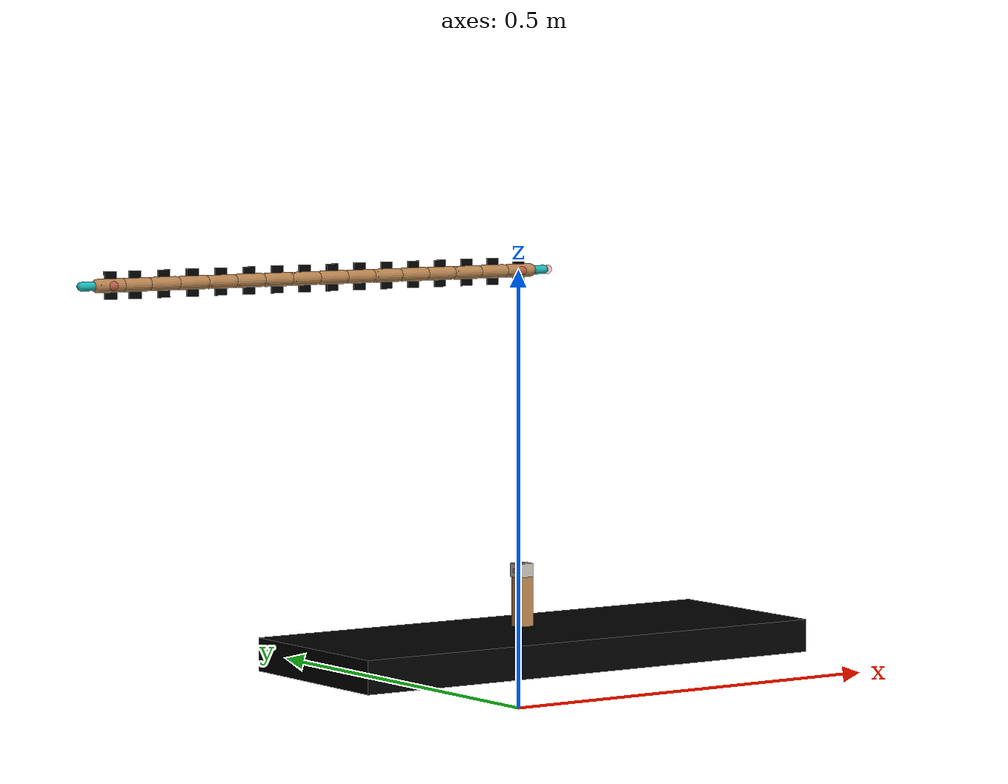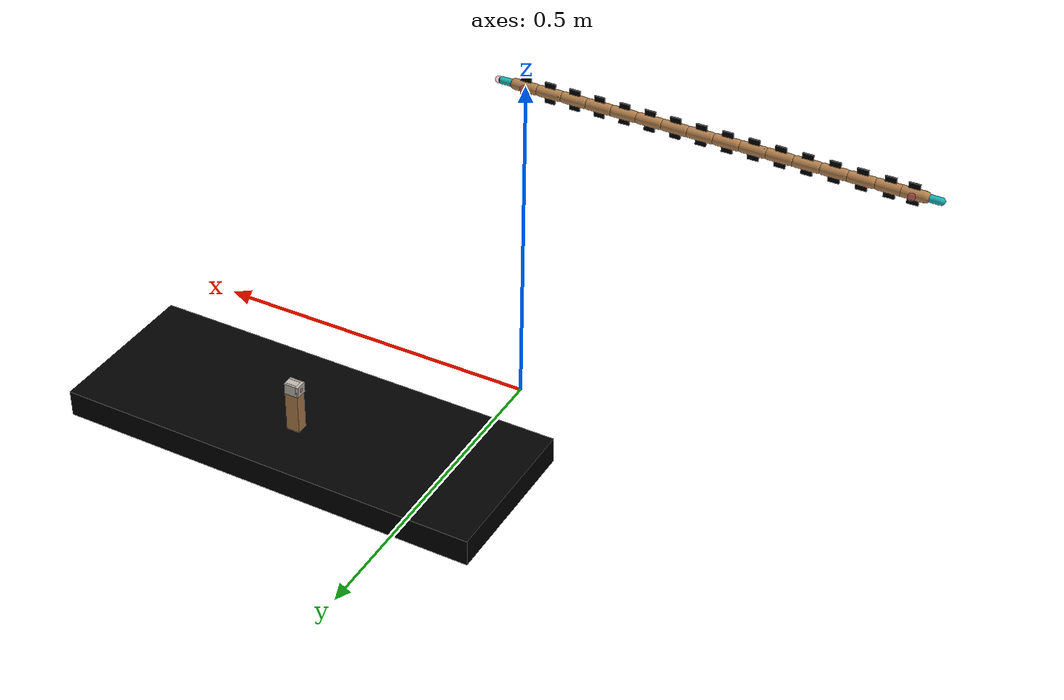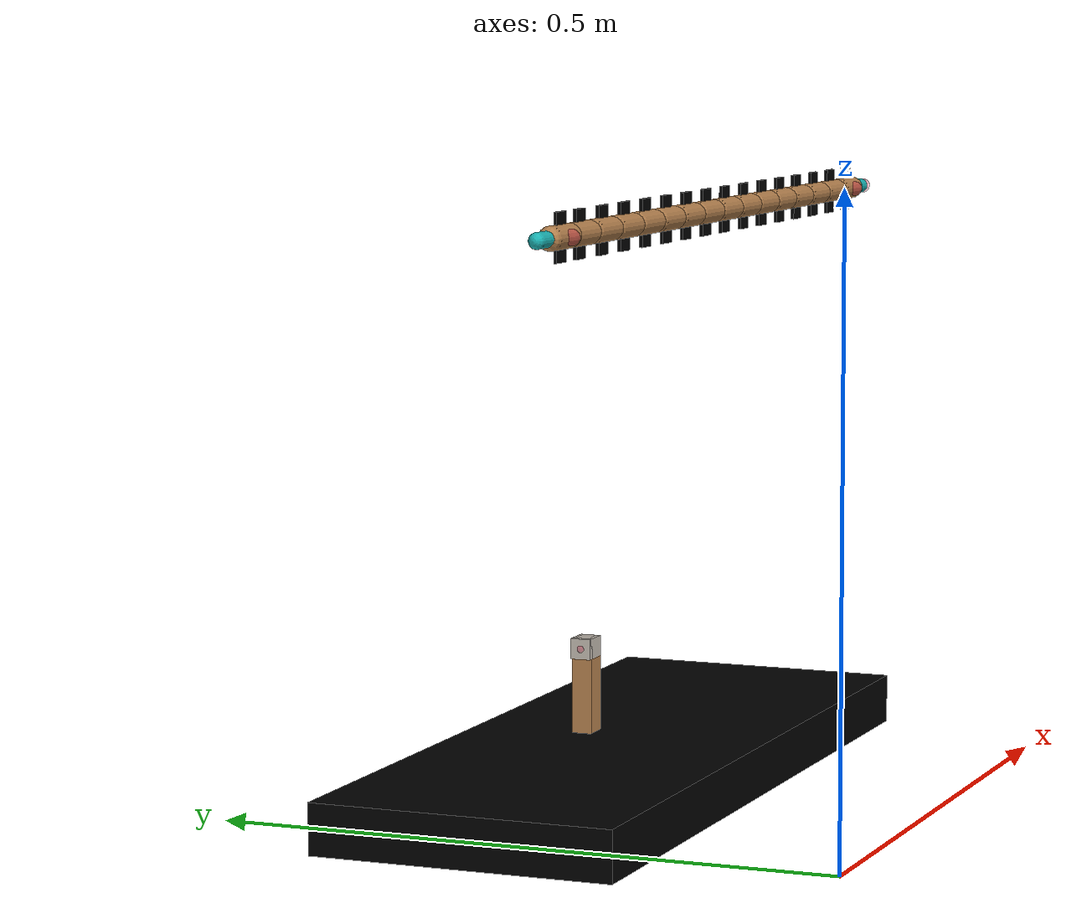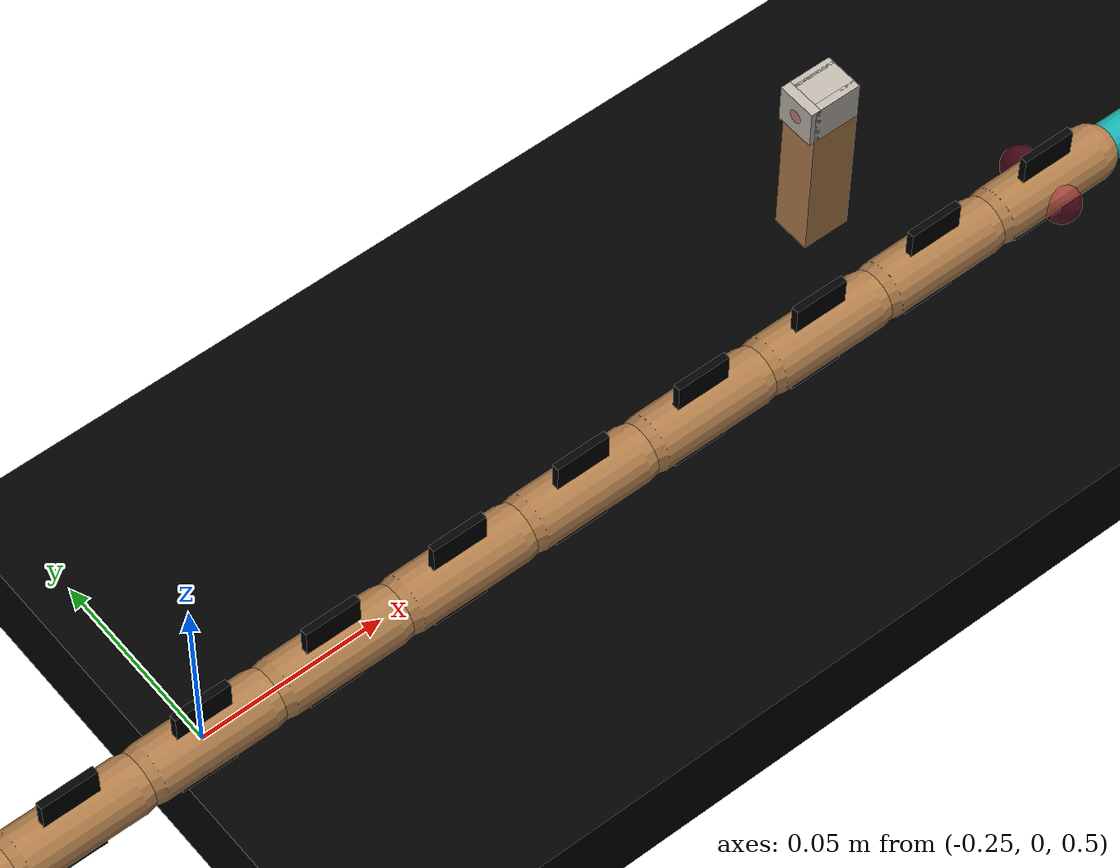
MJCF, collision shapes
<mujoco model="wire_insertion">
    <custom>
        <numeric data="0.4 0.25 0.151527 0.707107 0 0 -0.707107" name="wire1_initpos" />
        <!-- horizontal-->
        <numeric data="0.2 0.25 0.029527 1 0 0 0" name="table1_initpos" />
        <!-- vertical-->
    </custom>

    <asset>
        <material name="table_mat" specular="0" shininess="0.5" reflectance="0" rgba="0.93 0.93 0.93 1"/>
        <!-- ceramic table texture and material-->
        <texture file="../textures/ceramic.png" type="cube" name="tex-ceramic"/>
        <material name="table_ceramic" reflectance="0.0" shininess="0.0" specular="0.2" texrepeat="1 1" texture="tex-ceramic" />
        <texture file="../textures/steel-scratched.png" type="cube" name="steel-metal"/>
        <material name="smetal" reflectance="1.0" shininess="1.0" specular="1.0" texrepeat="1 1" texture="steel-metal" texuniform="true"/>
        <texture file="../textures/brass-ambra.png" type="cube" name="brass-metal"/>
        <material name="bmetal"  reflectance="1.0" shininess="1.0" specular="1.0" texrepeat="1 1" texture="brass-metal" texuniform="true"/>
        <mesh file="table_lack_0825/table.stl" name="part4" scale="0.015 0.015 0.02" />
        <texture file="../textures/light-wood.png" name="tex-light-wood" type="2d" />
        <material name="pencil-wood" reflectance="0.5" texrepeat="20 20" texture="tex-light-wood" texuniform="true" />
        <texture file="../textures/red-wood.png" name="tex-red-wood" type="2d" />
        <material name="red-wood" reflectance="0.5" texrepeat="20 20" texture="tex-red-wood" texuniform="true" />
        <texture name="grid" type="2d" builtin="checker" rgb1=".1 .2 .3" rgb2=".2 .3 .4" width="300" height="300" mark="edge" markrgb=".2 .3 .4"/>
        <material name="self" rgba=".7 .5 .3 1"/>
        <material name="self_default" rgba=".7 .5 .3 1"/>
        <material name="self_highlight" rgba="0 .5 .3 1"/>
        <material name="effector" rgba=".7 .4 .2 1"/>
        <material name="effector_default" rgba=".7 .4 .2 1"/>
        <material name="effector_highlight" rgba="0 .5 .3 1"/>
        <material name="decoration" rgba=".3 .5 .7 1"/>
        <material name="eye" rgba="0 .2 1 1"/>
        <material name="target" rgba=".6 .3 .3 1"/>
        <material name="target_default" rgba=".6 .3 .3 1"/>
        <material name="target_highlight" rgba=".6 .3 .3 .4"/>
        <material name="site" rgba=".5 .5 .5 .3"/>
    </asset>

    <default>
        <default class="swimmer">
            <joint type="hinge" pos="0 -0.015 0" axis="0 0 1" damping=".005" limited="true" solreflimit=".05 1" solimplimit="0 .8 .1" armature="1e-6"/>
            <default class="collision">
                <geom type="box" size="0.001 0.015 0.0075" quat="0.707107 0.707107 0 0" rgba="0 0 0 0"/>
            </default>
            <default class="visual">
                <geom type="capsule" size="0.0075" quat="0.707107 0.707107 0 0" fromto="0 -0.015 0 0 0.015 0" material="self"/>
            </default>
            <site size=".005" rgba="0.2941 0.9019 0.0980 0.3" type="sphere"/>
        </default>
    </default>

    <equality>
        <connect active="false" body1="wire1" body2="table1" anchor="0.10514361 0.19101518 0.10821976" solimp="1 1 0.5" solref="0.01 0.3" />
        <weld active="true" body1="table1" solimp="1 1 0.5" solref="0.01 0.3" />
    </equality>

    <compiler meshdir=""/>
    <size njmax="8000" nconmax="4000"/>

    <worldbody>
        <!-- include a wire -->
           -->

        <!-- Wire -->

        <body name="wire1" pos="0 0 .5" quat="0.707107 0 0 0.707107" childclass="swimmer">
            <inertial pos="0.055 0 0" quat="0.707107 0 0.707107 0" mass="0.00274889" diaginertia="2.97797e-07 2.97797e-07 3.43612e-08"/>
            <light name="light_1" diffuse=".8 .8 .8" pos="0 0 1.5"/>
            <camera name="tracking1" pos="0.0 -0.5 1.25" xyaxes="1 0 0 0 1 1" mode="trackcom" fovy="60"/>
            <camera name="tracking2" pos="-2.25 1.25 0.375" xyaxes="0 -1 0 .3 0 1" mode="trackcom" fovy="60"/>
            <camera name="eyes" pos="0 -.058 .005" xyaxes="-1 0 0 0 0 1"/>
            <geom name="wire1_I1_geom" conaffinity="0" contype="0" pos="0 -0.025 0" quat="0.707107 0.707107 0 0" size="0.005 0.01" rgba="0.1 0.7 0.7 1" group="1" type="capsule"/>--&gt;
            <geom name="noviz_collision_wire1_I1" condim="1" pos="0 -0.025 0" quat="0.707107 0.707107 0 0" size="0.005 0.01" type="capsule" rgba="0 0 0 0" group="0" solref="0.001 1"/>
            <geom name="wire1_G0_geom" class="visual" group="1"/>
            <geom name="noviz_collision_wire1_G0" class="collision" group="0"/>
            <site group="1" name="wire1_ltgt_site0" pos="0.0075 0 0" rgba="0.9019 0.0980 0.2941 0.3" size="0.005 0.005 0.005" type="sphere"/>
            <site group="1" name="wire1_rtgt_site0" pos="-0.0075 0 0" rgba="0.9019 0.0980 0.2941 0.3" size="0.005 0.005 0.005" type="sphere"/>
            <!--site for hole-->
            <site group="0" name="wire-hole,conn_site1" pos="0 -0.04 0" quat="0.707107 0 0.707107 0" rgba="0.9019 0.0980 0.2941 0.3" size="0.005"/>
            <!--site for connection-->
            <site name="wire1_horizontal_radius_site" pos="0.0 0 0" rgba="0.9019 0.0980 0.2941 0.3" size="0.0075"/>
            <site name="head"/>
            <body name="composite_B0" pos="0 0.035625 0"><inertial pos="0 0 0" quat="0.707107 0.707107 0 0" mass="0.0125664" diaginertia="1.98968e-06 1.98968e-06 6.28319e-07"/><geom class="visual" name="B0_G1_geom" group="1"/><geom class="collision" name="noviz_collision_B0_G1" group="0"/><site name="site_0"/><joint name="J0_0" range="-120.0 120.0" group="3"/><joint name="J1_0" axis="1 0 0" range="-120.0 120.0" group="3"/><body name="composite_B1" pos="0 0.035625 0"><inertial pos="0 0 0" quat="0.707107 0.707107 0 0" mass="0.0125664" diaginertia="1.98968e-06 1.98968e-06 6.28319e-07"/><geom class="visual" name="B1_G1_geom" group="1"/><geom class="collision" name="noviz_collision_B1_G1" group="0"/><site name="site_1"/><joint name="J0_1" range="-120.0 120.0" group="3"/><joint name="J1_1" axis="1 0 0" range="-120.0 120.0" group="3"/><body name="composite_B2" pos="0 0.035625 0"><inertial pos="0 0 0" quat="0.707107 0.707107 0 0" mass="0.0125664" diaginertia="1.98968e-06 1.98968e-06 6.28319e-07"/><geom class="visual" name="B2_G1_geom" group="1"/><geom class="collision" name="noviz_collision_B2_G1" group="0"/><site name="site_2"/><joint name="J0_2" range="-120.0 120.0" group="3"/><joint name="J1_2" axis="1 0 0" range="-120.0 120.0" group="3"/><body name="composite_B3" pos="0 0.035625 0"><inertial pos="0 0 0" quat="0.707107 0.707107 0 0" mass="0.0125664" diaginertia="1.98968e-06 1.98968e-06 6.28319e-07"/><geom class="visual" name="B3_G1_geom" group="1"/><geom class="collision" name="noviz_collision_B3_G1" group="0"/><site name="site_3"/><joint name="J0_3" range="-120.0 120.0" group="3"/><joint name="J1_3" axis="1 0 0" range="-120.0 120.0" group="3"/><body name="composite_B4" pos="0 0.035625 0"><inertial pos="0 0 0" quat="0.707107 0.707107 0 0" mass="0.0125664" diaginertia="1.98968e-06 1.98968e-06 6.28319e-07"/><geom class="visual" name="B4_G1_geom" group="1"/><geom class="collision" name="noviz_collision_B4_G1" group="0"/><site name="site_4"/><joint name="J0_4" range="-120.0 120.0" group="3"/><joint name="J1_4" axis="1 0 0" range="-120.0 120.0" group="3"/><body name="composite_B5" pos="0 0.035625 0"><inertial pos="0 0 0" quat="0.707107 0.707107 0 0" mass="0.0125664" diaginertia="1.98968e-06 1.98968e-06 6.28319e-07"/><geom class="visual" name="B5_G1_geom" group="1"/><geom class="collision" name="noviz_collision_B5_G1" group="0"/><site name="site_5"/><joint name="J0_5" range="-120.0 120.0" group="3"/><joint name="J1_5" axis="1 0 0" range="-120.0 120.0" group="3"/><body name="composite_B6" pos="0 0.035625 0"><inertial pos="0 0 0" quat="0.707107 0.707107 0 0" mass="0.0125664" diaginertia="1.98968e-06 1.98968e-06 6.28319e-07"/><geom class="visual" name="B6_G1_geom" group="1"/><geom class="collision" name="noviz_collision_B6_G1" group="0"/><site name="site_6"/><joint name="J0_6" range="-120.0 120.0" group="3"/><joint name="J1_6" axis="1 0 0" range="-120.0 120.0" group="3"/><body name="composite_B7" pos="0 0.035625 0"><inertial pos="0 0 0" quat="0.707107 0.707107 0 0" mass="0.0125664" diaginertia="1.98968e-06 1.98968e-06 6.28319e-07"/><geom class="visual" name="B7_G1_geom" group="1"/><geom class="collision" name="noviz_collision_B7_G1" group="0"/><site name="site_7"/><joint name="J0_7" range="-120.0 120.0" group="3"/><joint name="J1_7" axis="1 0 0" range="-120.0 120.0" group="3"/><body name="composite_B8" pos="0 0.035625 0"><inertial pos="0 0 0" quat="0.707107 0.707107 0 0" mass="0.0125664" diaginertia="1.98968e-06 1.98968e-06 6.28319e-07"/><geom class="visual" name="B8_G1_geom" group="1"/><geom class="collision" name="noviz_collision_B8_G1" group="0"/><site name="site_8"/><joint name="J0_8" range="-120.0 120.0" group="3"/><joint name="J1_8" axis="1 0 0" range="-120.0 120.0" group="3"/><body name="composite_B9" pos="0 0.035625 0"><inertial pos="0 0 0" quat="0.707107 0.707107 0 0" mass="0.0125664" diaginertia="1.98968e-06 1.98968e-06 6.28319e-07"/><geom class="visual" name="B9_G1_geom" group="1"/><geom class="collision" name="noviz_collision_B9_G1" group="0"/><site name="site_9"/><joint name="J0_9" range="-120.0 120.0" group="3"/><joint name="J1_9" axis="1 0 0" range="-120.0 120.0" group="3"/><body name="composite_B10" pos="0 0.035625 0"><inertial pos="0 0 0" quat="0.707107 0.707107 0 0" mass="0.0125664" diaginertia="1.98968e-06 1.98968e-06 6.28319e-07"/><geom class="visual" name="B10_G1_geom" group="1"/><geom class="collision" name="noviz_collision_B10_G1" group="0"/><site name="site_10"/><joint name="J0_10" range="-120.0 120.0" group="3"/><joint name="J1_10" axis="1 0 0" range="-120.0 120.0" group="3"/><body name="composite_B11" pos="0 0.035625 0"><inertial pos="0 0 0" quat="0.707107 0.707107 0 0" mass="0.0125664" diaginertia="1.98968e-06 1.98968e-06 6.28319e-07"/><geom class="visual" name="B11_G1_geom" group="1"/><geom class="collision" name="noviz_collision_B11_G1" group="0"/><site name="site_11"/><joint name="J0_11" range="-120.0 120.0" group="3"/><joint name="J1_11" axis="1 0 0" range="-120.0 120.0" group="3"/><body name="composite_B12" pos="0 0.035625 0"><inertial pos="0 0 0" quat="0.707107 0.707107 0 0" mass="0.0125664" diaginertia="1.98968e-06 1.98968e-06 6.28319e-07"/><geom class="visual" name="B12_G1_geom" group="1"/><geom class="collision" name="noviz_collision_B12_G1" group="0"/><site name="site_12"/><joint name="J0_12" range="-120.0 120.0" group="3"/><joint name="J1_12" axis="1 0 0" range="-120.0 120.0" group="3"/><body name="composite_B13" pos="0 0.035625 0"><inertial pos="0 0 0" quat="0.707107 0.707107 0 0" mass="0.0125664" diaginertia="1.98968e-06 1.98968e-06 6.28319e-07"/><geom class="visual" name="B13_G1_geom" group="1"/><geom class="collision" name="noviz_collision_B13_G1" group="0"/><site name="site_13"/><joint name="J0_13" range="-120.0 120.0" group="3"/><joint name="J1_13" axis="1 0 0" range="-120.0 120.0" group="3"/><body name="composite_wire2" pos="0 0.03 0"><inertial pos="0.0 0 0" quat="0.707107 0.707107 0 0" mass="0.00274889" diaginertia="1.98968e-06 1.98968e-06 6.28319e-07"/><geom class="visual" name="wire2_G0_geom" group="1"/><geom class="collision" name="noviz_collision_wire2_G0" group="0"/><geom name="wire2_I2_geom" conaffinity="0" contype="0" pos="0 0.025 0" quat="0.707107 0.707107 0 0" size="0.005 0.01" rgba="0.1 0.7 0.7 1" group="1" type="capsule"/><geom name="noviz_collision_wire2_I2" condim="1" pos="0 0.025 0" quat="0.707107 0.707107 0 0" size="0.005 0.01" rgba="0 0 0 0" group="0" type="capsule" solref="0.001 1"/><site name="wire2_ltgt_site0" pos="0.0075 0.0 0 " rgba="0.9019 0.0980 0.2941 0.3" size="0.005 0.005 0.005" type="sphere"/><site name="wire2_rtgt_site0" pos="-0.0075 0.0 0 " rgba="0.9019 0.0980 0.2941 0.3" size="0.005 0.005 0.005" type="sphere"/><site name="wire2_horizontal_radius_site" pos="0.0 0 0" rgba="0.9019 0.0980 0.2941 0.3" size="0.0075"/><joint name="J0_wire2" range="-120.0 120.0" group="3"/><joint name="J1_wire2" axis="1 0 0" range="-120.0 120.0" group="3"/></body></body></body></body></body></body></body></body></body></body></body></body></body></body></body></body>

        <!-- Table -->
        <body name="table1" pos="0.2 0.25 0.029527" quat="1 0 0 0">
            <geom conaffinity="0" contype="0" density="0" material="pencil-wood" mesh="part4" name="table1_geom" pos="0 0 0" rgba="0.82 0.71 0.55 1" group="1" solref="0.001 1" type="mesh" />
            <geom density="200" name="noviz_collision_table1_0" pos="0 0 0" quat="1 0 0 0" rgba="0 0 0 0" group="0" size="0.32 0.12 0.02" solref="0.001 1" type="box" />
            <site name="table1_corner_site1" pos="-0.385 -0.140 -0.023" rgba="0 0 0 0" size="0.005" />
            <site name="table1_corner_site2" pos="-0.385 0.140 -0.023" rgba="0 0 0 0" size="0.005" />
            <site name="table1_corner_site3" pos="0.385 -0.140 -0.023" rgba="0 0 0 0" size="0.005" />
            <site name="table1_corner_site4" pos="0.385 0.140 -0.023" rgba="0 0 0 0" size="0.005" />
            <site name="table1_corner_site5" pos="-0.385 -0.140 0.0233" rgba="0 0 0 0" size="0.005" />
            <site name="table1_corner_site6" pos="-0.385 0.140 0.0233" rgba="0 0 0 0" size="0.005" />
            <site name="table1_corner_site7" pos="0.385 -0.140 0.0233" rgba="0 0 0 0" size="0.005" />
            <site name="table1_corner_site8" pos="0.385 0.140 0.0233" rgba="0 0 0 0" size="0.005" />
            <site name="table1_bottom_site" pos="0.0 0.0 -0.0" rgba="0 0 0 0" size="0.0066" />
            <site name="table1_top_site" pos="0.0 0.0 0.02" rgba="0 0 0 0" size="0.0066" />
            <site name="table1_horizontal_radius_site" pos="0.0 0.0 0.0" rgba="0 0 0 0" size="0.18" />
<!--            &lt;!&ndash;Hole Base&ndash;&gt;-->

            <!--Hole 1-->
            <body name="composite_hole1" pos="0.0 0.1 0.08825" quat="0.7071408 0 0.7070727 0">
                <!-- Base-->
                <geom conaffinity="0" contype="0" density="0" material="pencil-wood" size="0.03 0.00825 0.01" name="base1_geom" group="1" pos="0.03825 -0.07 0" quat="1 0 0 0" solref="0.001 1" type="box" />
                <geom density="100" name="noviz_collision_base1" group="0" pos="0.03825 -0.07 0" quat="1 0 0 0" rgba="0 0 0 0" size="0.03 0.00825 0.01" friction="0.95 0.3 0.2" solref="0.001 1" type="box" />
                <!-- Hole-->
                <geom conaffinity="0" contype="0" density="0" material="smetal" size="0.01 0.0016  0.00825" name="hole1_1_geom" group="1" pos="0.0 -0.07665  0" quat="0.7073883 0 0.7068252 0" solref="0.001 1" type="box" />
                <geom density="100" name="noviz_collision_hole1_1" group="0" pos="0.0 -0.07665  0" quat="0.7073883 0 0.7068252 0" rgba="0 0 0 0" size="0.01 0.0016  0.00825" friction="0.95 0.3 0.2" solref="0.001 1" type="box" />
                <geom conaffinity="0" contype="0" density="0" material="smetal" size="0.01 0.00625 0.0016" name="hole1_2_geom" group="1" pos="-0.00665 -0.07 0" quat="0.7073883 0 0.7068252 0" solref="0.001 1" type="box" />
                <geom density="100" name="noviz_collision_hole1_2" group="0" pos="-0.00665 -0.07 0" quat="0.7073883 0 0.7068252 0" rgba="0 0 0 0" size="0.01 0.00625 0.0016" friction="0.95 0.3 0.2" solref="0.001 1" type="box" />
                <geom conaffinity="0" contype="0" density="0" material="smetal" size="0.01 0.00625 0.0016" name="hole1_3_geom" group="1" pos="0.00665 -0.07 0" quat="0.7073883 0 0.7068252 0" solref="0.001 1" type="box" />
                <geom density="100" name="noviz_collision_hole1_3" group="0" pos="0.00665 -0.07 0" quat="0.7073883 0 0.7068252 0" rgba="0 0 0 0" size="0.01 0.00625 0.0016" friction="0.95 0.3 0.2" solref="0.001 1" type="box" />
                <geom conaffinity="0" contype="0" density="0" material="smetal" size="0.01 0.0016 0.00825" name="hole1_4_geom" group="1" pos="0.0 -0.06335 0" quat="0.7073883 0 0.7068252 0" solref="0.001 1" type="box" />
                <geom density="100" name="noviz_collision_hole1_4" group="0" pos="0.0 -0.06335 0" quat="0.7073883 0 0.7068252 0" rgba="0 0 0 0" size="0.01 0.0016 0.00825" friction="0.95 0.3 0.2" solref="0.001 1" type="box" />
                <geom conaffinity="0" contype="0" density="0" material="smetal" size="0.0021 0.00825 0.00825" name="hole1_5_geom" group="1" pos="0.0 -0.07 -0.01" quat="0.7073883 0 0.7068252 0" solref="0.001 1" type="box" />
                <geom density="100" name="noviz_collision_hole1_5" group="0" pos="0.0 -0.07 -0.01" quat="0.7073883 0 0.7068252 0" rgba="0 0 0 0" size="0.0021 0.00825 0.00825" friction="0.95 0.3 0.2" solref="0.001 1" type="box" />
                <site group="0" name="hole-wire,reach_site1" pos="0.0 -0.07 0.048" rgba="0 0 0 0" size="0.005" />
                <site name="composite_hole1_horizontal_radius_site" pos="0.0 -0.07 0" rgba="0 0 0 0" size="0.012" />
            </body>
            <site group="0" name="hole-wire,conn_site1" pos="-0.008 0.03 0.08825" quat="0.7071408 0 0.7070727 0" rgba="0.9019 0.0980 0.2941 0.3" size="0.005" />

<!--            &lt;!&ndash;Hole 1&ndash;&gt;-->
<!--                &lt;!&ndash;Base&ndash;&gt;-->
<!--                &lt;!&ndash;Hole&ndash;&gt;-->

            <!--Clip 1-->
<!--                &lt;!&ndash; Base&ndash;&gt;-->
<!--                &lt;!&ndash; Clip&ndash;&gt;-->

<!--            &lt;!&ndash;Clip 2&ndash;&gt;-->
<!--                &lt;!&ndash; Base&ndash;&gt;-->
<!--                &lt;!&ndash; Clip&ndash;&gt;-->
        </body>

<!--&lt;!&ndash;            &lt;!&ndash; z_leg1 &ndash;&gt;&ndash;&gt;-->
<!--&lt;!&ndash;            &lt;!&ndash; x_leg2 &ndash;&gt;&ndash;&gt;-->
<!--&lt;!&ndash;            &lt;!&ndash; y_leg8 &ndash;&gt;&ndash;&gt;-->
<!--&lt;!&ndash;            &lt;!&ndash; x_leg3 &ndash;&gt;&ndash;&gt;-->
<!--&lt;!&ndash;            &lt;!&ndash; x_leg4 &ndash;&gt;&ndash;&gt;-->
<!--&lt;!&ndash;            &lt;!&ndash; y_leg9 &ndash;&gt;&ndash;&gt;-->

<!--            panel-->

        <!--Hole-->

    </worldbody>

</mujoco>
